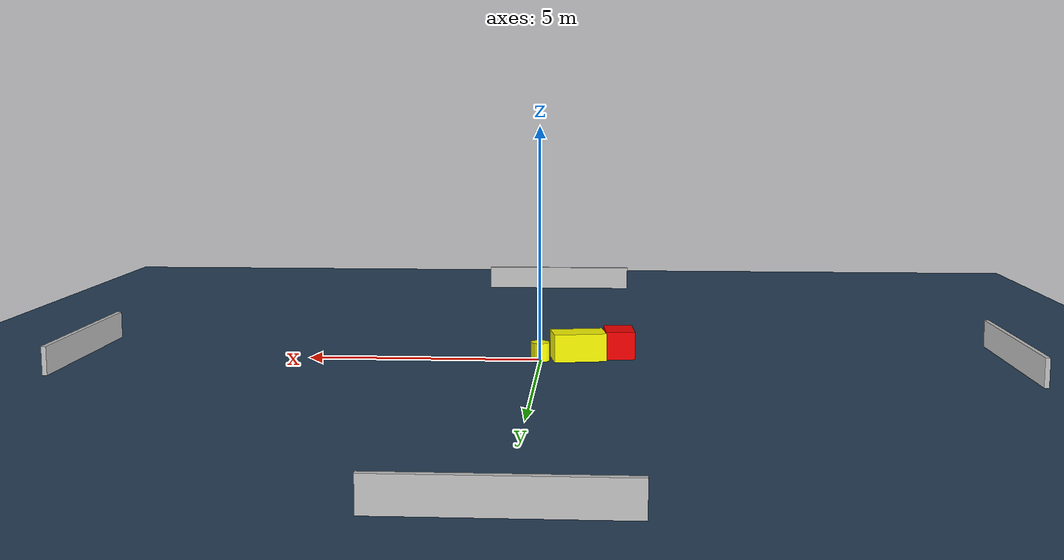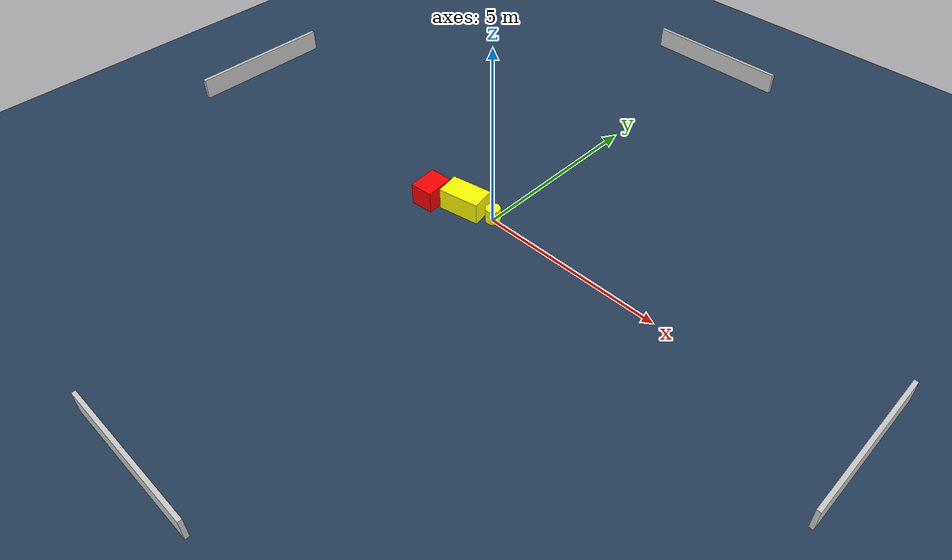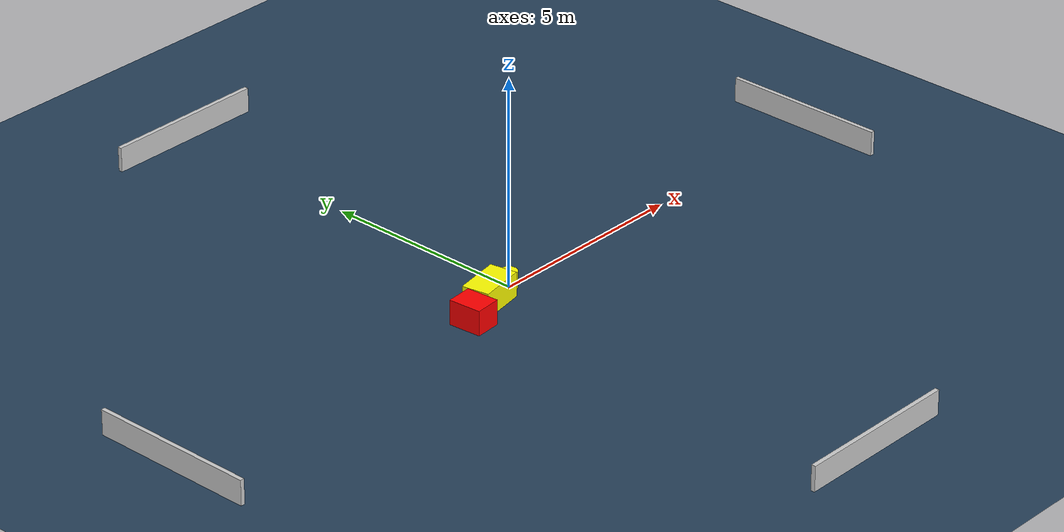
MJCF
<?xml version="1.0" ?>
<mujoco model="generated_environment">
  <option timestep="0.01" integrator="RK4" cone="elliptic"/>
  <default>
    <geom density="1"/>
  </default>
  <asset>
    <texture builtin="gradient" height="3072" name="skybox" rgb1="0.3 0.5 0.7" rgb2="0 0 0" type="skybox" width="512"/>
    <texture builtin="checker" height="300" name="groundplane" rgb1="0.2 0.3 0.4" rgb2="0.1 0.2 0.3" type="2d" width="300"/>
    <material name="groundplane" reflectance="0.2" texrepeat="5 5" texture="groundplane"/>
  </asset>
  <worldbody>
    <light dir="0 0 -1" directional="true" pos="0 0 1.5"/>
    <geom condim="3" friction="0.5 0.005 0.001" material="groundplane" name="floor" pos="0 0 0" size="0 0 0.05" type="plane"/>
    <body name="walls">
      <geom name="wall_1" condim="4" pos="-10.0 0.0 0.3" rgba="0.800000011920929 0.800000011920929 0.800000011920929 1.0" size="0.05 2.0 0.3" type="box"/>
      <geom name="wall_2" condim="4" pos="10.0 0.0 0.3" rgba="0.800000011920929 0.800000011920929 0.800000011920929 1.0" size="0.05 2.0 0.3" type="box"/>
      <geom name="wall_3" condim="4" pos="0.0 -10.0 0.3" rgba="0.800000011920929 0.800000011920929 0.800000011920929 1.0" size="2.0 0.05 0.3" type="box"/>
      <geom name="wall_4" condim="4" pos="0.0 10.0 0.3" rgba="0.800000011920929 0.800000011920929 0.800000011920929 1.0" size="2.0 0.05 0.3" type="box"/>
    </body>
    <body name="robot">
      <joint name="joint_x" type="slide" pos="0 0 0" axis="1 0 0"/>
      <joint name="joint_y" type="slide" pos="0 0 0" axis="0 1 0"/>
      <geom name="robot" type="cylinder" pos="0.0 0.0 0.2" size="0.2 0.2 0.0" mass="5.0" friction="1.0 0.005 0.0001" condim="4" rgba="1.0 1.0 0.0 1.0"/>
    </body>
    <body name="obstacle_1_movable">
      <geom name="obstacle_1_movable" condim="4" pos="-0.8108923014163734 -0.17837893004399896 0.3" euler="0 0 280.3019787327602" friction="0.0 0.005 0.001" rgba="1.0 1.0 0.0 1.0" size="0.3265348454766419 0.5648386341027389 0.3" type="box" mass="0.1"/>
      <joint type="free"/>
    </body>
    <body name="obstacle_2_static">
      <geom name="obstacle_2_static" condim="4" pos="-1.6919895557786093 -0.5330657675944624 0.3" euler="0 0 4.527170200032349" friction="0.0 0.005 0.001" rgba="1.0 0.0 0.0 1.0" size="0.3120169205870843 0.39447986924172973 0.3" type="box"/>
    </body>
  </worldbody>
  <actuator>
    <motor name="actuator_x" joint="joint_x" gear="1" ctrlrange="-1 1"/>
    <motor name="actuator_y" joint="joint_y" gear="1" ctrlrange="-1 1"/>
  </actuator>
</mujoco>
